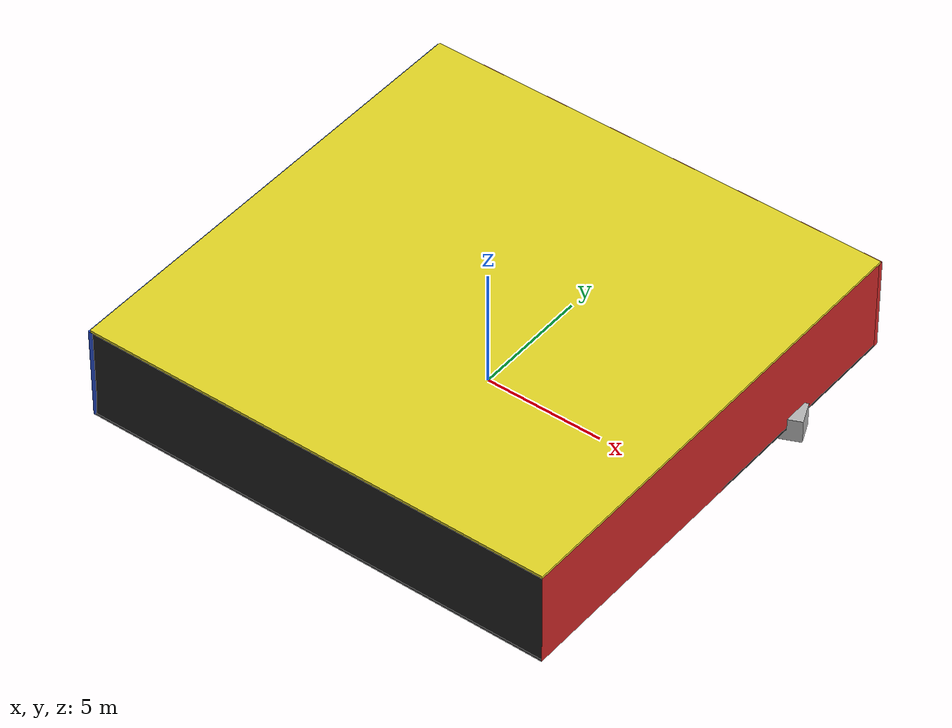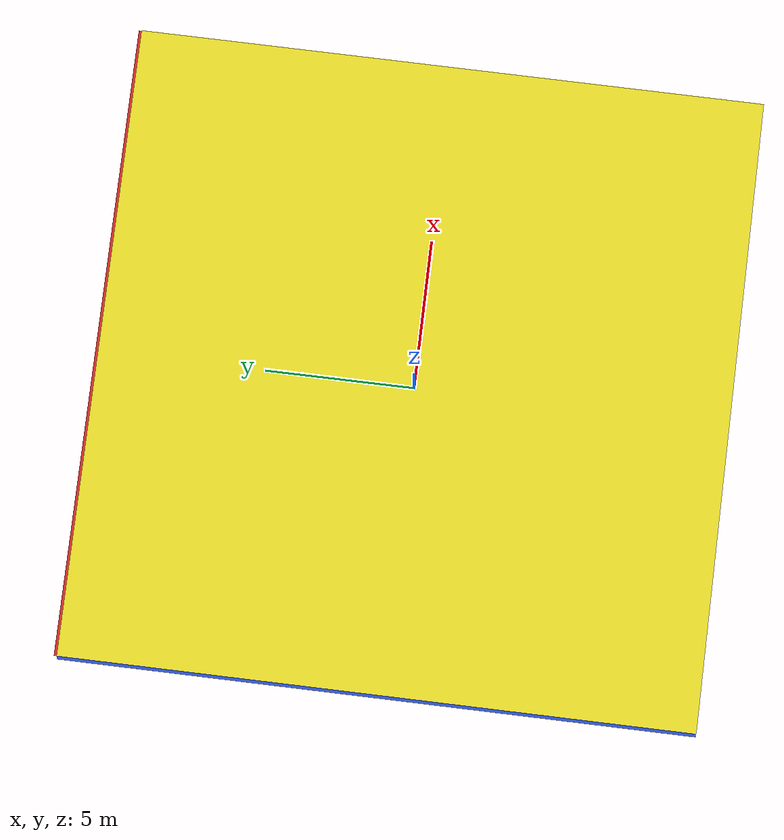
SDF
<sdf version="1.4">
 <world name="default">
  <physics type="ode">
   <max_step_size>0.001</max_step_size>
   <real_time_factor>1</real_time_factor>
   <real_time_update_rate>1000</real_time_update_rate>
   <gravity>0 0 -9.8</gravity>
  </physics>
  <scene><ambient>0.4 0.4 0.4 1</ambient><background>0.7 0.7 0.7 1</background><shadows>1</shadows></scene>
  <model name="Surrounding">
   <static>1</static>
   <link name="Ceiling">
    <collision name="Ceiling_Collision"><geometry><box><size>20 20 0.1</size></box></geometry></collision>
    <visual name="Ceiling_Visual">
     <geometry><box><size>20 20 0.1</size></box></geometry>
     <material>
      <script><uri>file://media/materials/scripts/gazebo.material</uri><name>Gazebo/YellowGlow</name></script>
     </material>
    </visual>
    <pose>0 0 4.05 0 0 0</pose>
   </link>
   <link name="Wall_South">
    <collision name="Wall_South_Collision">
     <geometry><box><size>20 0 4</size></box></geometry>
     <pose>0 0 2 0 -0 0</pose>
    </collision>
    <visual name="Wall_South_Visual">
     <pose>0 0 2 0 -0 0</pose>
     <geometry><box><size>20 0 4</size></box></geometry>
     <material>
      <script><uri>file://media/materials/scripts/gazebo.material</uri><name>Gazebo/FlatBlack</name></script>
     </material>
    </visual>
    <velocity_decay><linear>0</linear><angular>0</angular></velocity_decay>
    <pose>0 -10 0 0 -0 0</pose>
   </link>
   <link name="Wall_East">
    <collision name="Wall_21_Collision">
     <geometry><box><size>20 0 4</size></box></geometry>
     <pose>0 0 2 0 -0 0</pose>
    </collision>
    <visual name="Wall_21_Visual">
     <pose>0 0 2 0 -0 0</pose>
     <geometry><box><size>20 0 4</size></box></geometry>
     <material>
      <script><uri>file://media/materials/scripts/gazebo.material</uri><name>Gazebo/RedBright</name></script>
     </material>
    </visual>
    <velocity_decay><linear>0</linear><angular>0</angular></velocity_decay>
    <pose>10 0 0 0 -0 1.5708</pose>
   </link>
   <link name="Wall_North">
    <collision name="Wall_22_Collision">
     <geometry><box><size>20 0.2 4</size></box></geometry>
     <pose>0 0 2 0 -0 0</pose>
    </collision>
    <visual name="Wall_22_Visual">
     <pose>0 0 2 0 -0 0</pose>
     <geometry><box><size>20 0.2 4</size></box></geometry>
     <material>
      <script><uri>file://media/materials/scripts/gazebo.material</uri><name>Gazebo/RedGlow</name></script>
     </material>
    </visual>
    <velocity_decay><linear>0</linear><angular>0</angular></velocity_decay>
    <pose>0 10 0 0 -0 0</pose>
   </link>
   <link name="Wall_West">
    <collision name="Wall_23_Collision">
     <geometry><box><size>20 0.2 4</size></box></geometry>
     <pose>0 0 2 0 -0 0</pose>
    </collision>
    <visual name="Wall_23_Visual">
     <pose>0 0 2 0 -0 0</pose>
     <geometry><box><size>20 0.2 4</size></box></geometry>
     <material>
      <script><uri>file://media/materials/scripts/gazebo.material</uri><name>Gazebo/BlueGlow</name></script>
     </material>
    </visual>
    <velocity_decay><linear>0</linear><angular>0</angular></velocity_decay>
    <pose>-10 0 0 0 0 -1.5708</pose>
   </link>
   <link name="Ground_link">
    <collision name="collision">
     <pose>0 0 .05 0 -0 0</pose>
     <geometry><box><size>20 20 0.1</size></box></geometry>
    </collision>
    <visual name="visual">
     <pose>0 0 .05 0 -0 0</pose>
     <geometry><box><size>20 20 0.1</size></box></geometry>
     <material>
      <script><uri>file://media/materials/scripts/gazebo.material</uri><name>Gazebo/FlatBlack</name></script>
     </material>
    </visual>
   </link>
   <static>1</static>
  </model>
  <spherical_coordinates>
   <surface_model>EARTH_WGS84</surface_model>
   <latitude_deg>0</latitude_deg>
   <longitude_deg>0</longitude_deg>
   <elevation>0</elevation>
   <heading_deg>0</heading_deg>
  </spherical_coordinates>
  <light name="lightball_0" type="diffuse">
   <diffuse>0.8 0.8 0.8 1</diffuse>
   <specular>0.2 0.2 0.2 1</specular>
   <attenuation>
    <range>100</range>
    <constant>0.7</constant>
    <linear>0.01</linear>
    <quadratic>0.001</quadratic>
   </attenuation>
   <direction>-0.5 0.1 -0.9</direction>
   <pose>-4.62469765299 -8.39628934291 2.33275576132 0 0 0</pose>
  </light>
  <light name="lightball_1" type="diffuse">
   <diffuse>0.8 0.8 0.8 1</diffuse>
   <specular>0.2 0.2 0.2 1</specular>
   <attenuation>
    <range>100</range>
    <constant>0.7</constant>
    <linear>0.01</linear>
    <quadratic>0.001</quadratic>
   </attenuation>
   <direction>-0.5 0.1 -0.9</direction>
   <pose>9.82835298422 1.98840642 2.56759124713 0 0 0</pose>
  </light>
  <light name="lightball_2" type="diffuse">
   <diffuse>0.8 0.8 0.8 1</diffuse>
   <specular>0.2 0.2 0.2 1</specular>
   <attenuation>
    <range>100</range>
    <constant>0.7</constant>
    <linear>0.01</linear>
    <quadratic>0.001</quadratic>
   </attenuation>
   <direction>-0.5 0.1 -0.9</direction>
   <pose>5.16865378539 0.0507019982334 0.530790681454 0 0 0</pose>
  </light>
  <light name="lightball_3" type="diffuse">
   <diffuse>0.8 0.8 0.8 1</diffuse>
   <specular>0.2 0.2 0.2 1</specular>
   <attenuation>
    <range>100</range>
    <constant>0.7</constant>
    <linear>0.01</linear>
    <quadratic>0.001</quadratic>
   </attenuation>
   <direction>-0.5 0.1 -0.9</direction>
   <pose>-7.99018996794 5.27999072433 1.72619273349 0 0 0</pose>
  </light>
  <light name="lightball_4" type="diffuse">
   <diffuse>0.8 0.8 0.8 1</diffuse>
   <specular>0.2 0.2 0.2 1</specular>
   <attenuation>
    <range>100</range>
    <constant>0.7</constant>
    <linear>0.01</linear>
    <quadratic>0.001</quadratic>
   </attenuation>
   <direction>-0.5 0.1 -0.9</direction>
   <pose>-1.8946357088 -2.09082221537 0.775371021202 0 0 0</pose>
  </light>
  <light name="lightball_5" type="diffuse">
   <diffuse>0.8 0.8 0.8 1</diffuse>
   <specular>0.2 0.2 0.2 1</specular>
   <attenuation>
    <range>100</range>
    <constant>0.7</constant>
    <linear>0.01</linear>
    <quadratic>0.001</quadratic>
   </attenuation>
   <direction>-0.5 0.1 -0.9</direction>
   <pose>0.0801893164761 -3.16964015282 1.24615235411 0 0 0</pose>
  </light>
  <light name="lightball_6" type="diffuse">
   <diffuse>0.8 0.8 0.8 1</diffuse>
   <specular>0.2 0.2 0.2 1</specular>
   <attenuation>
    <range>100</range>
    <constant>0.7</constant>
    <linear>0.01</linear>
    <quadratic>0.001</quadratic>
   </attenuation>
   <direction>-0.5 0.1 -0.9</direction>
   <pose>9.02188325783 6.34537627181 3.76923553394 0 0 0</pose>
  </light>
  <light name="lightball_7" type="diffuse">
   <diffuse>0.8 0.8 0.8 1</diffuse>
   <specular>0.2 0.2 0.2 1</specular>
   <attenuation>
    <range>100</range>
    <constant>0.7</constant>
    <linear>0.01</linear>
    <quadratic>0.001</quadratic>
   </attenuation>
   <direction>-0.5 0.1 -0.9</direction>
   <pose>-3.76606426396 2.62469597099 3.18949738544 0 0 0</pose>
  </light>
  <light name="lightball_8" type="diffuse">
   <diffuse>0.8 0.8 0.8 1</diffuse>
   <specular>0.2 0.2 0.2 1</specular>
   <attenuation>
    <range>100</range>
    <constant>0.7</constant>
    <linear>0.01</linear>
    <quadratic>0.001</quadratic>
   </attenuation>
   <direction>-0.5 0.1 -0.9</direction>
   <pose>1.96171581548 -2.13474055295 3.86233693432 0 0 0</pose>
  </light>
  <light name="lightball_9" type="diffuse">
   <diffuse>0.8 0.8 0.8 1</diffuse>
   <specular>0.2 0.2 0.2 1</specular>
   <attenuation>
    <range>100</range>
    <constant>0.7</constant>
    <linear>0.01</linear>
    <quadratic>0.001</quadratic>
   </attenuation>
   <direction>-0.5 0.1 -0.9</direction>
   <pose>-9.22922332031 -7.68060278546 3.43175410623 0 0 0</pose>
  </light>
  <include>
   <uri>model://robocup_3Dsim_goal</uri>
   <pose>-3.52455478669 -3.32231201505 0 0 0 0.997358763038</pose>
  </include>
  <include><uri>model://cabinet</uri><pose>-1.65867668695 -6.43547718433 0 0 0 3.09766528412</pose></include>
  <include><uri>model://cabinet</uri><pose>6.46461777857 -4.27182648106 0 0 0 0.362696386157</pose></include>
  <include><uri>model://cabinet</uri><pose>7.82101105636 1.40237672769 0 0 0 0.545156628067</pose></include>
  <include>
   <uri>model://textured_shapes</uri>
   <pose>8.50831915348 4.33365334258 0 0 0 1.98201236093</pose>
  </include>
 </world>
</sdf>

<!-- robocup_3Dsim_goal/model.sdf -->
<sdf version="1.5">
  <model name="robocup_3d_goal">
    <static>true</static>
    <link name="left_post">
      <pose>0 1.05 0.45 0 0 0</pose>
      <collision name="collision">
        <geometry>
          <cylinder>
            <radius>0.05</radius>
            <length>0.9</length>
          </cylinder>
        </geometry>
      </collision>
      <visual name="visual">
        <geometry>
          <cylinder>
            <radius>0.05</radius>
            <length>0.9</length>
          </cylinder>
        </geometry>
        <material>
          <script>
            <uri>file://media/materials/scripts/gazebo.material</uri>
            <name>Gazebo/ZincYellow</name>
          </script>
        </material>
      </visual>
    </link>
    <link name="left_support_horiz_lower">
      <pose>0.30 1.05 0.01 0 0 0</pose>
      <collision name="collision">
        <geometry>
          <box>
            <size>0.50 0.02 0.02</size>
          </box>
        </geometry>
      </collision>
      <visual name="visual">
        <geometry>
          <box>
            <size>0.50 0.02 0.02</size>
          </box>
        </geometry>
        <material>
          <script>
            <uri>file://media/materials/scripts/gazebo.material</uri>
            <name>Gazebo/White</name>
          </script>
        </material>
      </visual>
    </link>
    <link name="left_support_horiz_upper">
      <pose>0.30 1.05 0.79 0 0 0</pose>
      <collision name="collision">
        <geometry>
          <box>
            <size>0.50 0.02 0.02</size>
          </box>
        </geometry>
      </collision>
      <visual name="visual">
        <geometry>
          <box>
            <size>0.50 0.02 0.02</size>
          </box>
        </geometry>
        <material>
          <script>
            <uri>file://media/materials/scripts/gazebo.material</uri>
            <name>Gazebo/White</name>
          </script>
        </material>
      </visual>
    </link>
    <link name="left_support_vertical">
      <pose>0.56 1.05 0.4 0 1.5708 0</pose>
      <collision name="collision">
        <geometry>
          <box>
            <size>0.80 0.02 0.02</size>
          </box>
        </geometry>
      </collision>
      <visual name="visual">
        <geometry>
          <box>
            <size>0.80 0.02 0.02</size>
          </box>
        </geometry>
        <material>
          <script>
            <uri>file://media/materials/scripts/gazebo.material</uri>
            <name>Gazebo/White</name>
          </script>
        </material>
      </visual>
    </link>
    <link name="right_support_horiz_lower">
      <pose>0.30 -1.05 0.01 0 0 0</pose>
      <collision name="collision">
        <geometry>
          <box>
            <size>0.50 0.02 0.02</size>
          </box>
        </geometry>
      </collision>
      <visual name="visual">
        <geometry>
          <box>
            <size>0.50 0.02 0.02</size>
          </box>
        </geometry>
        <material>
          <script>
            <uri>file://media/materials/scripts/gazebo.material</uri>
            <name>Gazebo/White</name>
          </script>
        </material>
      </visual>
    </link>
    <link name="right_support_horiz_upper">
      <pose>0.30 -1.05 0.79 0 0 0</pose>
      <collision name="collision">
        <geometry>
          <box>
            <size>0.50 0.02 0.02</size>
          </box>
        </geometry>
      </collision>
      <visual name="visual">
        <geometry>
          <box>
            <size>0.50 0.02 0.02</size>
          </box>
        </geometry>
        <material>
          <script>
            <uri>file://media/materials/scripts/gazebo.material</uri>
            <name>Gazebo/White</name>
          </script>
        </material>
      </visual>
    </link>
    <link name="right_support_vertical">
      <pose>0.56 -1.05 0.4 0 1.5708 0</pose>
      <collision name="collision">
        <geometry>
          <box>
            <size>0.80 0.02 0.02</size>
          </box>
        </geometry>
      </collision>
      <visual name="visual">
        <geometry>
          <box>
            <size>0.80 0.02 0.02</size>
          </box>
        </geometry>
        <material>
          <script>
            <uri>file://media/materials/scripts/gazebo.material</uri>
            <name>Gazebo/White</name>
          </script>
        </material>
      </visual>
    </link>
    <link name="center_support_horiz_lower">
      <pose>0.56 0 0.01 0 1.5708 0</pose>
      <collision name="collision">
        <geometry>
          <box>
            <size>0.02 2.08 0.02</size>
          </box>
        </geometry>
      </collision>
      <visual name="visual">
        <geometry>
          <box>
            <size>0.02 2.08 0.02</size>
          </box>
        </geometry>
        <material>
          <script>
            <uri>file://media/materials/scripts/gazebo.material</uri>
            <name>Gazebo/White</name>
          </script>
        </material>
      </visual>
    </link>
    <link name="center_support_horiz_upper">
      <pose>0.56 0 0.79 0 1.5708 0</pose>
      <collision name="collision">
        <geometry>
          <box>
            <size>0.02 2.08 0.02</size>
          </box>
        </geometry>
      </collision>
      <visual name="visual">
        <geometry>
          <box>
            <size>0.02 2.08 0.02</size>
          </box>
        </geometry>
        <material>
          <script>
            <uri>file://media/materials/scripts/gazebo.material</uri>
            <name>Gazebo/White</name>
          </script>
        </material>
      </visual>
    </link>
    <link name="right_post">
      <pose>0 -1.05 0.45 0 0 0</pose>
      <collision name="collision">
        <geometry>
          <cylinder>
            <radius>0.05</radius>
            <length>0.9</length>
          </cylinder>
        </geometry>
      </collision>
      <visual name="visual">
        <geometry>
          <cylinder>
            <radius>0.05</radius>
            <length>0.9</length>
          </cylinder>
        </geometry>
        <material>
          <script>
            <uri>file://media/materials/scripts/gazebo.material</uri>
            <name>Gazebo/ZincYellow</name>
          </script>
        </material>
      </visual>
    </link>
    <link name="crossbar">
      <pose>0 0 0.85 1.57 1.57 0</pose>
      <collision name="collision">
        <geometry>
          <cylinder>
            <radius>0.05</radius>
            <length>2.0</length>
          </cylinder>
        </geometry>
      </collision>
      <visual name="visual">
        <geometry>
          <cylinder>
            <radius>0.05</radius>
            <length>2.0</length>
          </cylinder>
        </geometry>
        <material>
          <script>
            <uri>file://media/materials/scripts/gazebo.material</uri>
            <name>Gazebo/ZincYellow</name>
          </script>
        </material>
      </visual>
    </link>
    <link name="center_net">
      <pose>0.56 0 0.40 0 0 0</pose>
      <collision name="collision">
        <geometry>
          <box>
            <size>0.01 2.1 0.80</size>
          </box>
        </geometry>
      </collision>
      <visual name="visual">
        <geometry>
          <box>
            <size>0.01 2.1 0.80</size>
          </box>
        </geometry>
        <material>
          <script>
            <uri>model://../model_source/models/robocup09_spl_field/materials/scripts/</uri>
            <uri>model://../model_source/models/robocup09_spl_field/materials/textures/</uri>
            <name>RoboCup/Net</name>
          </script>
        </material>
      </visual>
    </link>
    <link name="left_net">
      <pose>0.30 1.05 0.40 0 0 0</pose>
      <collision name="collision">
        <geometry>
          <box>
            <size>0.50 0.01 0.76</size>
          </box>
        </geometry>
      </collision>
      <visual name="visual">
        <geometry>
          <box>
            <size>0.50 0.01 0.76</size>
          </box>
        </geometry>
        <material>
          <script>
            <uri>model://../model_source/models/robocup09_spl_field/materials/scripts/</uri>
            <uri>model://../model_source/models/robocup09_spl_field/materials/textures/</uri>
            <name>RoboCup/Net</name>
          </script>
        </material>
      </visual>
    </link>
    <link name="right_net">
      <pose>0.30 -1.05 0.40 0 0 0</pose>
      <collision name="collision">
        <geometry>
          <box>
            <size>0.50 0.01 0.76</size>
          </box>
        </geometry>
      </collision>
      <visual name="visual">
        <geometry>
          <box>
            <size>0.50 0.01 0.76</size>
          </box>
        </geometry>
        <material>
          <script>
            <uri>model://../model_source/models/robocup09_spl_field/materials/scripts/</uri>
            <uri>model://../model_source/models/robocup09_spl_field/materials/textures/</uri>
            <name>RoboCup/Net</name>
          </script>
        </material>
      </visual>
    </link>
  </model>
</sdf>

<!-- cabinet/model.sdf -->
<sdf version="1.5">
  <model name="cabinet">
    <static>true</static>
    <link name="cabinet_bottom_plate">
      <inertial>
        <pose>0 0 -1 0 0 0</pose>
        <inertia>
          <ixx>2.050000</ixx>
          <ixy>0</ixy>
          <ixz>0</ixz>
          <iyy>2.050000</iyy>
          <iyz>0</iyz>
          <izz>2.050000</izz>
        </inertia>
        <mass>25.000000</mass>
      </inertial>
      <collision name="cabinet_bottom_plate_geom">
        <pose>0 0 0.010000 0 0 0</pose>
        <geometry>
          <box>
            <size>0.450000 0.450000 0.020000</size>
          </box>
        </geometry>
      </collision>
      <visual name="cabinet_bottom_plate_geom_visual">
        <pose>0 0 0.010000 0 0 0</pose>
        <geometry>
          <box>
            <size>0.450000 0.450000 0.020000</size>
          </box>
        </geometry>
        <material>
          <script>
            <uri>model://media/materials/scripts/gazebo.material</uri>
            <name>Gazebo/Wood</name>
          </script>
        </material>
      </visual>
      <collision name="cabinet_bottom_plate_geom_cabinet_back_plate">
        <pose>0.235000 0 0.510000 0 0 0</pose>
        <geometry>
          <box>
            <size>0.020000 0.450000 1.020000</size>
          </box>
        </geometry>
      </collision>
      <visual name="cabinet_bottom_plate_geom_cabinet_back_plate_visual">
        <pose>0.235000 0 0.510000 0 0 0</pose>
        <geometry>
          <box>
            <size>0.020000 0.450000 1.020000</size>
          </box>
        </geometry>
        <material>
          <script>
            <uri>model://media/materials/scripts/gazebo.material</uri>
            <name>Gazebo/Wood</name>
          </script>
        </material>
      </visual>
      <collision name="cabinet_bottom_plate_geom_cabinet_left_plate">
        <pose>0 0.235000 0.510000 0 0 0</pose>
        <geometry>
          <box>
            <size>0.450000 0.020000 1.020000</size>
          </box>
        </geometry>
      </collision>
      <visual name="cabinet_bottom_plate_geom_cabinet_left_plate_visual">
        <pose>0 0.235000 0.510000 0 0 0</pose>
        <geometry>
          <box>
            <size>0.450000 0.020000 1.020000</size>
          </box>
        </geometry>
        <material>
          <script>
            <uri>model://media/materials/scripts/gazebo.material</uri>
            <name>Gazebo/Wood</name>
          </script>
        </material>
      </visual>
      <collision name="cabinet_bottom_plate_geom_cabinet_middle_plate">
        <pose>0 0 0.510000 0 0 0</pose>
        <geometry>
          <box>
            <size>0.450000 0.450000 0.020000</size>
          </box>
        </geometry>
      </collision>
      <visual name="cabinet_bottom_plate_geom_cabinet_middle_plate_visual">
        <pose>0 0 0.510000 0 0 0</pose>
        <geometry>
          <box>
            <size>0.450000 0.450000 0.020000</size>
          </box>
        </geometry>
        <material>
          <script>
            <uri>model://media/materials/scripts/gazebo.material</uri>
            <name>Gazebo/Wood</name>
          </script>
        </material>
      </visual>
      <collision name="cabinet_bottom_plate_geom_cabinet_right_plate">
        <pose>0 -0.235000 0.510000 0 0 0</pose>
        <geometry>
          <box>
            <size>0.450000 0.020000 1.020000</size>
          </box>
        </geometry>
      </collision>
      <visual name="cabinet_bottom_plate_geom_cabinet_right_plate_visual">
        <pose>0 -0.235000 0.510000 0 0 0</pose>
        <geometry>
          <box>
            <size>0.450000 0.020000 1.020000</size>
          </box>
        </geometry>
        <material>
          <script>
            <uri>model://media/materials/scripts/gazebo.material</uri>
            <name>Gazebo/Wood</name>
          </script>
        </material>
      </visual>
      <collision name="cabinet_bottom_plate_geom_cabinet_top_plate">
        <pose>0 0 1.010000 0 0 0</pose>
        <geometry>
          <box>
            <size>0.450000 0.450000 0.020000</size>
          </box>
        </geometry>
      </collision>
      <visual name="cabinet_bottom_plate_geom_cabinet_top_plate_visual">
        <pose>0 0 1.010000 0 0 0</pose>
        <geometry>
          <box>
            <size>0.450000 0.450000 0.020000</size>
          </box>
        </geometry>
        <material>
          <script>
            <uri>model://media/materials/scripts/gazebo.material</uri>
            <name>Gazebo/Wood</name>
          </script>
        </material>
      </visual>
    </link>
  </model>
</sdf>

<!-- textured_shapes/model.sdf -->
<sdf version="1.6">
  <model name="textured_shapes">
    <pose>0 0 0.5 0 0 0</pose>
    <link name="box">
      <pose>0 -1.5 0 0 0 0</pose>
      <collision name="collision">
        <geometry>
          <box>
            <size>1 1 1</size>
          </box>
        </geometry>
      </collision>
      <visual name="visual">
        <geometry>
          <box>
            <size>1 1 1</size>
          </box>
        </geometry>
        <material>
          <script>
            <uri>model://../model_source/models/textured_shapes/materials/scripts</uri>
            <uri>model://../model_source/models/textured_shapes/materials/textures</uri>
            <name>TexturedShape/Squares</name>
          </script>
        </material>
      </visual>
    </link>
    <link name="sphere">
      <collision name="collision">
        <geometry>
          <sphere>
            <radius>0.5</radius>
          </sphere>
        </geometry>
      </collision>
      <visual name="visual">
        <geometry>
          <sphere>
            <radius>0.5</radius>
          </sphere>
        </geometry>
        <material>
          <script>
            <uri>model://../model_source/models/textured_shapes/materials/scripts</uri>
            <uri>model://../model_source/models/textured_shapes/materials/textures</uri>
            <name>TexturedShape/Squares</name>
          </script>
        </material>
      </visual>
    </link>
    <link name="cylinder">
      <pose>0 1.5 0 0 0 0</pose>
      <collision name="collision">
        <geometry>
          <cylinder>
            <radius>0.5</radius>
            <length>1</length>
          </cylinder>
        </geometry>
      </collision>
      <visual name="visual">
        <geometry>
          <cylinder>
            <radius>0.5</radius>
            <length>1</length>
          </cylinder>
        </geometry>
        <material>
          <script>
            <uri>model://../model_source/models/textured_shapes/materials/scripts</uri>
            <uri>model://../model_source/models/textured_shapes/materials/textures</uri>
            <name>TexturedShape/Squares</name>
          </script>
        </material>
      </visual>
    </link>
  </model>
</sdf>
